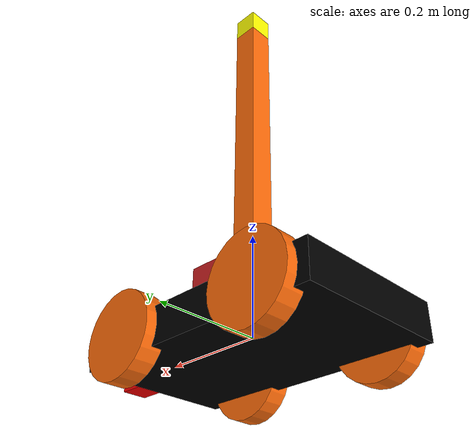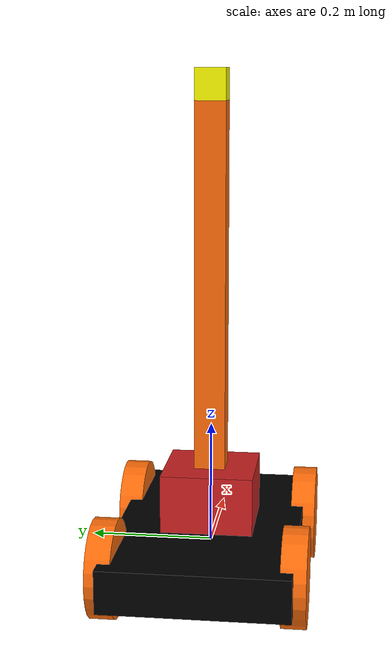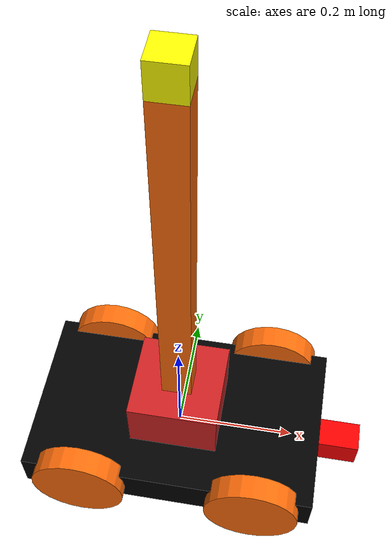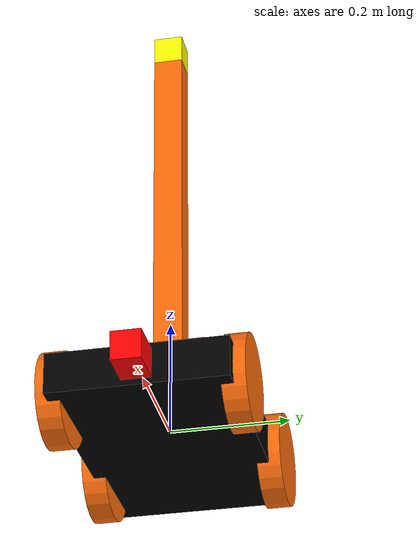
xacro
<?xml version="1.0"?>
<robot xmlns:xacro="http://www.ros.org/wiki/xacro" name="robot">
<xacro:include filename="$(find exproblab_assignment_2)/robot_urdf/urdf/robot_model.gazebo"/>

	<xacro:property name="length_wheel" value="0.04" />
	<xacro:property name="radius_wheel" value="0.08" />

	<xacro:macro name="default_inertial" params="mass">
               <inertial>
                       <mass value="${mass}" />
                       <origin rpy="0 1.5707 1.5707" xyz="0 0 0"/>
                       <inertia ixx="0.000526666666667" ixy="0" ixz="0" iyy="0.000526666666667" iyz="0" izz="0.001"/>
               </inertial>
	</xacro:macro>

    <xacro:macro name="wheel_geometry">
		<geometry>
       			<cylinder length="${length_wheel}" radius="${radius_wheel}"/>
     	</geometry>
	</xacro:macro>

  <material name="black">
    <color rgba="0.0 0.0 0.0 1.0"/>
  </material>
  <material name="blue">
    <color rgba="0.203125 0.23828125 0.28515625 1.0"/>
  </material>
  <material name="green">
    <color rgba="0.0 0.8 0.0 1.0"/>
  </material>
  <material name="grey">
    <color rgba="0.2 0.2 0.2 1.0"/>
  </material>
  <material name="orange">
    <color rgba="1.0 0.423529411765 0.0392156862745 1.0"/>
  </material>
  <material name="brown">
    <color rgba="0.870588235294 0.811764705882 0.764705882353 1.0"/>
  </material>
  <material name="red">
    <color rgba="0.80078125 0.12890625 0.1328125 1.0"/>
  </material>
  <material name="white">
    <color rgba="1.0 1.0 1.0 1.0"/>
  </material>

  <link name="link_chassis">
    <!-- pose and inertial -->
    <pose>0 0 0.1 0 0 0</pose>
    <inertial>
      <mass value="5"/>
      <origin rpy="0 0 0" xyz="0 0 0.1"/>
      <inertia ixx="0.0395416666667" ixy="0" ixz="0" iyy="0.106208333333" iyz="0" izz="0.106208333333"/>
    </inertial>
    <!-- body -->
    <collision name="collision_chassis">
      <geometry>
        <box size="0.5 0.3 0.07"/>
      </geometry>
    </collision>
    <visual>
      <origin rpy="0 0 0" xyz="0 0 0"/>
      <geometry>
        <box size="0.5 0.3 0.07"/>
      </geometry>
      <material name="black"/>
    </visual>
  </link>

  <!-- the four wheels -->
  <link name="link_right_wheel_front">
    <xacro:default_inertial mass="0.5"/>
    <collision name="link_right_wheel_collision">
      <origin rpy="0 1.5707 1.5707" xyz="0 0 0"/>
      <xacro:wheel_geometry />
    </collision>
    <visual name="link_right_wheel_visual">
      <origin rpy="0 1.5707 1.5707" xyz="0 0 0"/>
      <xacro:wheel_geometry />
      <material name="orange"/>
    </visual>
  </link>

  <link name="link_right_wheel_back">
    <xacro:default_inertial mass="0.5"/>
    <collision name="link_right_wheel_collision">
      <origin rpy="0 1.5707 1.5707" xyz="0 0 0"/>
      <xacro:wheel_geometry />
    </collision>
    <visual name="link_right_wheel_visual">
      <origin rpy="0 1.5707 1.5707" xyz="0 0 0"/>
      <xacro:wheel_geometry />
      <material name="orange"/>
    </visual>
  </link>

  <link name="link_left_wheel_front">
    <xacro:default_inertial mass="0.5"/>
    <collision name="link_left_wheel_collision">
      <origin rpy="0 1.5707 1.5707" xyz="0 0 0"/>
      <xacro:wheel_geometry />
    </collision>
    <visual name="link_left_wheel_visual">
      <origin rpy="0 1.5707 1.5707" xyz="0 0 0"/>
      <xacro:wheel_geometry />
      <material name="orange"/>
    </visual>
  </link>

  <link name="link_left_wheel_back">
    <xacro:default_inertial mass="0.5"/>
    <collision name="link_left_wheel_collision">
      <origin rpy="0 1.5707 1.5707" xyz="0 0 0"/>
      <xacro:wheel_geometry />
    </collision>
    <visual name="link_left_wheel_visual">
      <origin rpy="0 1.5707 1.5707" xyz="0 0 0"/>
      <xacro:wheel_geometry />
      <material name="orange"/>
    </visual>
  </link>

  <!-- the four wheel joints -->
  <joint name="joint_right_wheel_front" type="continuous">
    <origin rpy="0 0 0" xyz="0.15 -0.15 0"/>
    <child link="link_right_wheel_front"/>
    <parent link="link_chassis"/>
    <axis rpy="0 0 0" xyz="0 1 0"/>
    <limit effort="2000" velocity="200"/>
    <joint_properties damping="1.0" friction="1.0"/>
  </joint>

  <joint name="joint_right_wheel_back" type="continuous">
    <origin rpy="0 0 0" xyz="-0.15 -0.15 0"/>
    <child link="link_right_wheel_back"/>
    <parent link="link_chassis"/>
    <axis rpy="0 0 0" xyz="0 1 0"/>
    <limit effort="2000" velocity="200"/>
    <joint_properties damping="1.0" friction="1.0"/>
  </joint>

  <joint name="joint_left_wheel_front" type="continuous">
    <origin rpy="0 0 0" xyz="0.15 0.15 0"/>
    <child link="link_left_wheel_front"/>
    <parent link="link_chassis"/>
    <axis rpy="0 0 0" xyz="0 1 0"/>
    <limit effort="2000" velocity="200"/>
    <joint_properties damping="1.0" friction="1.0"/>
  </joint>

  <joint name="joint_left_wheel_back" type="continuous">
    <origin rpy="0 0 0" xyz="-0.15 0.15 0"/>
    <child link="link_left_wheel_back"/>
    <parent link="link_chassis"/>
    <axis rpy="0 0 0" xyz="0 1 0"/>
    <limit effort="2000" velocity="200"/>
    <joint_properties damping="1.0" friction="1.0"/>
  </joint>

  <!-- Manipulator for the camera -->

  <!-- Manipulator base -->
  <link name="manipulator_base_link">
  	<inertial>
  		<mass value="0.1"/>
  		<origin xyz="0 0 0" rpy="0 0 0" />
  		<inertia ixx="0.0000416666667" ixy="0" ixz="0" iyy="0.0000416666667" iyz="0" izz="0.0000416666667"/>
  	</inertial>
  	<collision>
  	  <origin xyz="0 0 0" rpy="0 0 0"/>
      <geometry>
        <box size="0.15 0.15 0.1"/>
      </geometry>
  	</collision>
  	<visual>
  	  <origin xyz="0 0 0" rpy="0 0 0"/>
      <geometry>
        <box size="0.15 0.15 0.1"/>
      </geometry>
      <material name="red" />
  	</visual>
  </link>

  <joint name="manipulator_base_joint" type="revolute">
	    <axis xyz="0 0 1"/>
  	  <origin rpy="0 0 0" xyz="0 0 0.08"/>
      <limit effort="1000.0" lower="0" upper="6.28" velocity="1"/>
    <joint_properties damping="1.0" friction="1.0"/>
	    <parent link="link_chassis"/>
  	  <child link="manipulator_base_link"/>
	</joint>

  <!-- Manipulator first joint -->
  <link name="manipulator_link_1">
  	<inertial>
  		<mass value="0.025"/>
  		<origin xyz="0 0 0.3" rpy="0 0 0" />
  		<inertia ixx="0.000010279" ixy="0" ixz="0" iyy="0.000010279" iyz="0" izz="0.000007225"/>
  	</inertial>
  	<collision>
  	  <origin xyz="0 0 0.3" rpy="0 0 0"/>
      <geometry>
        <box size="0.05 0.05 0.6"/>
      </geometry>
  	</collision>
  	<visual>
  	  <origin xyz="0 0 0.3" rpy="0 0 0"/>
      <geometry>
        <box size="0.05 0.05 0.6"/>
      </geometry>
      <material name="orange" />
  	</visual>
  </link>

  <joint name="manipulator_joint_1" type="prismatic">
  	<axis xyz="0 0 1"/>
  	<limit effort="1000" velocity="0.05" lower="-0.2" upper="0"/>
    <joint_properties damping="1.0" friction="1.0"/>
  	<origin rpy="0 0 0" xyz="0 0 0.045"/>
  	<parent link="manipulator_base_link"/>
  	<child link="manipulator_link_1"/>
  </joint>

  <!-- Hokuyo Laser -->
  <joint name="hokuyo_joint" type="fixed">
    <axis xyz="0 1 0" />
    <origin xyz="0.27 0.0 0.0" rpy="0 0 0"/>
    <parent link="link_chassis"/>
    <child link="hokuyo_link"/>
  </joint>

  <link name="hokuyo_link">
    <collision>
      <origin xyz="0 0 0" rpy="0 0 0"/>
      <geometry>
      <box size="0.1 0.05 0.05"/>
      </geometry>
    </collision>

	    <visual>
	      <origin xyz="0 0 0" rpy="0 0 0"/>
	      <geometry>
		<box size="0.1 0.05 0.05"/>
	      </geometry>
	      <material name="red">
		<color rgba="1 0 0 1"/>
	      </material>
	    </visual>

    <inertial>
      <mass value="1e-5" />
      <origin xyz="0 0 0" rpy="0 0 0"/>
      <inertia ixx="1e-6" ixy="0" ixz="0" iyy="1e-6" iyz="0" izz="1e-6" />
    </inertial>
  </link>

  <!-- Camera -->
  <link name="camera_link">
	    <collision>
	      <origin xyz="0 0 0" rpy="0 0 0"/>
	      <geometry>
		<box size="0.05 0.05 0.05"/>
	      </geometry>
	    </collision>
	    <visual>
	      <origin xyz="0 0 0" rpy="0 0 0"/>
	      <geometry>
		<box size="0.05 0.05 0.05"/>
	      </geometry>
	      <material name="yellow">
		<color rgba="1 1 0 1"/>
	      </material>
	    </visual>
	    <inertial>
	      <mass value="1e-5" />
	      <origin xyz="0 0 0" rpy="0 0 0"/>
	      <inertia ixx="1e-6" ixy="0" ixz="0" iyy="1e-6" iyz="0" izz="1e-6" />
	    </inertial>
  </link>

  <joint name="camera_joint" type="fixed">
  	<axis xyz="0 0 1"/>
  	<origin xyz="0 0 0.625" rpy="0 0 0"/>
  	<parent link="manipulator_link_1"/>
	  <child link="camera_link"/>
  </joint>

   <!-- transmissions definition -->

  <transmission name="manipulator_base_joint_trans">
    <type>transmission_interface/SimpleTransmission</type>
    <joint name="manipulator_base_joint">
      <hardwareInterface>hardware_interface/EffortJointInterface</hardwareInterface>
    </joint>
    <actuator name="motor1">
      <hardwareInterface>hardware_interface/EffortJointInterface</hardwareInterface>
      <mechanicalInterface>1</mechanicalInterface>
    </actuator>
  </transmission>

  <transmission name="manipulator_joint_1_trans">
    <type>transmission_interface/SimpleTransmission</type>
    <joint name="manipulator_joint_1">
      <hardwareInterface>hardware_interface/EffortJointInterface</hardwareInterface>
    </joint>
    <actuator name="motor2">
      <hardwareInterface>hardware_interface/EffortJointInterface</hardwareInterface>
      <mechanicalInterface>1</mechanicalInterface>
    </actuator>
  </transmission>

</robot>
